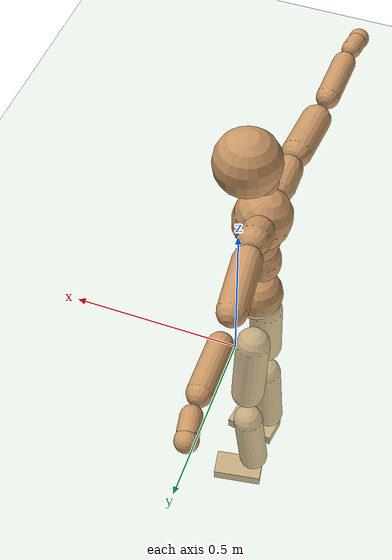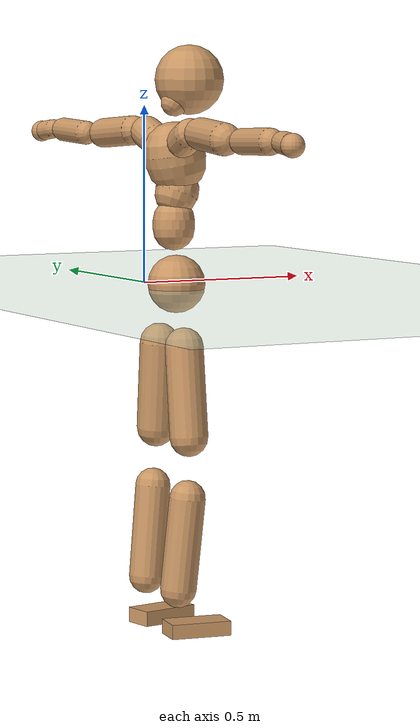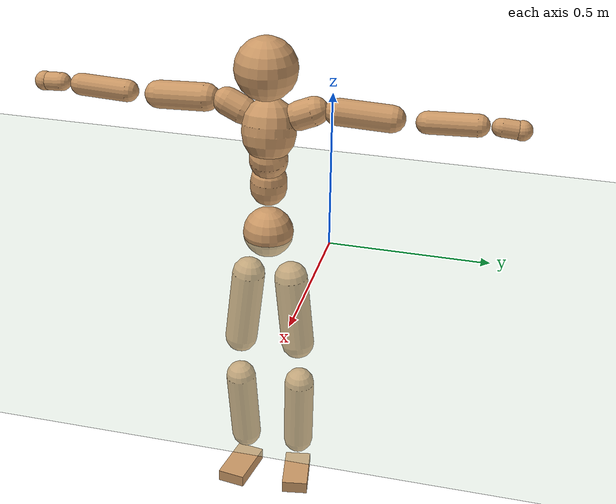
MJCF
<mujoco model="humanoid">
  <compiler coordinate="local" angle="radian"/>
  <default>
    <joint damping="0.0" armature="0.01" stiffness="0.0" limited="true"/>
    <geom conaffinity="1" condim="3" contype="7" margin="0.001" rgba="0.8 0.6 .4 1"/>
  </default>
  <asset>
    <texture type="skybox" builtin="gradient" rgb1=".4 .5 .6" rgb2="0 0 0" width="100" height="100"/>
    <texture builtin="flat" height="1278" mark="cross" markrgb="1 1 1" name="texgeom" random="0.01" rgb1="0.8 0.6 0.4" rgb2="0.8 0.6 0.4" type="cube" width="127"/>
    <texture builtin="checker" height="100" name="texplane" rgb1="0 0 0" rgb2="0.8 0.8 0.8" type="2d" width="100"/>
    <material name="MatPlane" reflectance="0.5" shininess="1" specular="1" texrepeat="60 60" texture="texplane"/>
    <material name="geom" texture="texgeom" texuniform="true"/>
  </asset>
  <worldbody>
    <light cutoff="100" diffuse="1 1 1" dir="-0 0 -1.3" directional="true" exponent="1" pos="0 0 1.3" specular=".1 .1 .1"/>
    <geom conaffinity="1" condim="3" name="floor" pos="0 0 0" rgba="0.8 0.9 0.8 1" size="100 100 .2" type="plane" material="MatPlane"/>
    <body name="Pelvis" pos="-0.0009 -0.1978 0.0117">
      <freejoint name="Pelvis"/>
      <geom type="sphere" contype="1" conaffinity="1" density="500" size="0.0803" pos="0.0000 0.0000 0.0000" name="Pelvis"/>
      <body name="L_Hip" pos="-0.0175 0.0629 -0.0872">
        <joint name="L_Hip_x" type="hinge" pos="0 0 0" axis="1 0 0" stiffness="800" damping="80" armature="0.02" range="-180.0000 180.0000"/>
        <joint name="L_Hip_y" type="hinge" pos="0 0 0" axis="0 1 0" stiffness="800" damping="80" armature="0.02" range="-180.0000 180.0000"/>
        <joint name="L_Hip_z" type="hinge" pos="0 0 0" axis="0 0 1" stiffness="800" damping="80" armature="0.02" range="-180.0000 180.0000"/>
        <geom type="capsule" contype="1" conaffinity="1" density="500" fromto="0.0007 0.0082 -0.0809 0.0030 0.0330 -0.3236" size="0.0542" name="L_Hip"/>
        <body name="L_Knee" pos="0.0037 0.0412 -0.4044">
          <joint name="L_Knee_x" type="hinge" pos="0 0 0" axis="1 0 0" stiffness="800" damping="80" armature="0.02" range="-180.0000 180.0000"/>
          <joint name="L_Knee_y" type="hinge" pos="0 0 0" axis="0 1 0" stiffness="800" damping="80" armature="0.02" range="-180.0000 180.0000"/>
          <joint name="L_Knee_z" type="hinge" pos="0 0 0" axis="0 0 1" stiffness="800" damping="80" armature="0.02" range="-180.0000 180.0000"/>
          <geom type="capsule" contype="1" conaffinity="1" density="500" fromto="-0.0082 -0.0026 -0.0851 -0.0327 -0.0105 -0.3403" size="0.0494" name="L_Knee"/>
          <body name="L_Ankle" pos="-0.0409 -0.0132 -0.4254">
            <joint name="L_Ankle_x" type="hinge" pos="0 0 0" axis="1 0 0" stiffness="800" damping="80" armature="0.02" range="-180.0000 180.0000"/>
            <joint name="L_Ankle_y" type="hinge" pos="0 0 0" axis="0 1 0" stiffness="800" damping="80" armature="0.02" range="-180.0000 180.0000"/>
            <joint name="L_Ankle_z" type="hinge" pos="0 0 0" axis="0 0 1" stiffness="800" damping="80" armature="0.02" range="-180.0000 180.0000"/>
            <geom type="box" contype="1" conaffinity="1" density="500" pos="0.0598 0.0101 -0.0295" size="0.0833 0.0428 0.021" quat="0.9965 0.0000 0.0000 0.0838" name="L_Ankle"/>
            <body name="L_Toe" pos="0.1197 0.0203 -0.059">
              <joint name="L_Toe_x" type="hinge" pos="0 0 0" axis="1 0 0" stiffness="500" damping="50" armature="0.02" range="-180.0000 180.0000"/>
              <joint name="L_Toe_y" type="hinge" pos="0 0 0" axis="0 1 0" stiffness="500" damping="50" armature="0.02" range="-180.0000 180.0000"/>
              <joint name="L_Toe_z" type="hinge" pos="0 0 0" axis="0 0 1" stiffness="500" damping="50" armature="0.02" range="-180.0000 180.0000"/>
              <geom type="box" contype="1" conaffinity="1" density="500" pos="0.0000 0.0000 0.0299" size="0.0009 0.0022 0.0011" quat="0.9959 0.0000 0.0000 0.0904" name="L_Toe"/>
            </body>
          </body>
        </body>
      </body>
      <body name="R_Hip" pos="-0.0128 -0.0606 -0.0853">
        <joint name="R_Hip_x" type="hinge" pos="0 0 0" axis="1 0 0" stiffness="800" damping="80" armature="0.02" range="-180.0000 180.0000"/>
        <joint name="R_Hip_y" type="hinge" pos="0 0 0" axis="0 1 0" stiffness="800" damping="80" armature="0.02" range="-180.0000 180.0000"/>
        <joint name="R_Hip_z" type="hinge" pos="0 0 0" axis="0 0 1" stiffness="800" damping="80" armature="0.02" range="-180.0000 180.0000"/>
        <geom type="capsule" contype="1" conaffinity="1" density="500" fromto="0.0001 -0.0093 -0.0826 0.0003 -0.0373 -0.3303" size="0.0533" name="R_Hip"/>
        <body name="R_Knee" pos="0.0003 -0.0466 -0.4129">
          <joint name="R_Knee_x" type="hinge" pos="0 0 0" axis="1 0 0" stiffness="800" damping="80" armature="0.02" range="-180.0000 180.0000"/>
          <joint name="R_Knee_y" type="hinge" pos="0 0 0" axis="0 1 0" stiffness="800" damping="80" armature="0.02" range="-180.0000 180.0000"/>
          <joint name="R_Knee_z" type="hinge" pos="0 0 0" axis="0 0 1" stiffness="800" damping="80" armature="0.02" range="-180.0000 180.0000"/>
          <geom type="capsule" contype="1" conaffinity="1" density="500" fromto="-0.0076 0.0035 -0.0850 -0.0304 0.0139 -0.3401" size="0.0499" name="R_Knee"/>
          <body name="R_Ankle" pos="-0.038 0.0174 -0.4251">
            <joint name="R_Ankle_x" type="hinge" pos="0 0 0" axis="1 0 0" stiffness="800" damping="80" armature="0.02" range="-180.0000 180.0000"/>
            <joint name="R_Ankle_y" type="hinge" pos="0 0 0" axis="0 1 0" stiffness="800" damping="80" armature="0.02" range="-180.0000 180.0000"/>
            <joint name="R_Ankle_z" type="hinge" pos="0 0 0" axis="0 0 1" stiffness="800" damping="80" armature="0.02" range="-180.0000 180.0000"/>
            <geom type="box" contype="1" conaffinity="1" density="500" pos="0.0614 -0.0092 -0.0247" size="0.0855 0.0458 0.0202" quat="0.9972 0.0000 0.0000 -0.0746" name="R_Ankle"/>
            <body name="R_Toe" pos="0.1229 -0.0185 -0.0494">
              <joint name="R_Toe_x" type="hinge" pos="0 0 0" axis="1 0 0" stiffness="500" damping="50" armature="0.02" range="-180.0000 180.0000"/>
              <joint name="R_Toe_y" type="hinge" pos="0 0 0" axis="0 1 0" stiffness="500" damping="50" armature="0.02" range="-180.0000 180.0000"/>
              <joint name="R_Toe_z" type="hinge" pos="0 0 0" axis="0 0 1" stiffness="500" damping="50" armature="0.02" range="-180.0000 180.0000"/>
              <geom type="box" contype="1" conaffinity="1" density="500" pos="0.0000 0.0000 0.0273" size="0.0008 0.0022 0.0011" quat="0.9978 0.0000 0.0000 -0.0656" name="R_Toe"/>
            </body>
          </body>
        </body>
      </body>
      <body name="Torso" pos="-0.0103 -0.0029 0.0988">
        <joint name="Torso_x" type="hinge" pos="0 0 0" axis="1 0 0" stiffness="1000" damping="100" armature="0.02" range="-180.0000 180.0000"/>
        <joint name="Torso_y" type="hinge" pos="0 0 0" axis="0 1 0" stiffness="1000" damping="100" armature="0.02" range="-180.0000 180.0000"/>
        <joint name="Torso_z" type="hinge" pos="0 0 0" axis="0 0 1" stiffness="1000" damping="100" armature="0.02" range="-180.0000 180.0000"/>
        <geom type="capsule" contype="1" conaffinity="1" density="500" fromto="0.0018 0.0025 0.0786 0.0012 0.0016 0.0524" size="0.0578" name="Torso"/>
        <body name="Spine" pos="0.003 0.0041 0.1309">
          <joint name="Spine_x" type="hinge" pos="0 0 0" axis="1 0 0" stiffness="1000" damping="100" armature="0.02" range="-180.0000 180.0000"/>
          <joint name="Spine_y" type="hinge" pos="0 0 0" axis="0 1 0" stiffness="1000" damping="100" armature="0.02" range="-180.0000 180.0000"/>
          <joint name="Spine_z" type="hinge" pos="0 0 0" axis="0 0 1" stiffness="1000" damping="100" armature="0.02" range="-180.0000 180.0000"/>
          <geom type="capsule" contype="1" conaffinity="1" density="500" fromto="0.0121 0.0010 0.0296 0.0081 0.0007 0.0197" size="0.0603" name="Spine"/>
          <body name="Chest" pos="0.0202 0.0017 0.0493">
            <joint name="Chest_x" type="hinge" pos="0 0 0" axis="1 0 0" stiffness="1000" damping="100" armature="0.02" range="-180.0000 180.0000"/>
            <joint name="Chest_y" type="hinge" pos="0 0 0" axis="0 1 0" stiffness="1000" damping="100" armature="0.02" range="-180.0000 180.0000"/>
            <joint name="Chest_z" type="hinge" pos="0 0 0" axis="0 0 1" stiffness="1000" damping="100" armature="0.02" range="-180.0000 180.0000"/>
            <geom type="capsule" contype="1" conaffinity="1" density="500" fromto="-0.0198 -0.0014 0.0849 -0.0132 -0.0009 0.0566" size="0.0842" name="Chest"/>
            <body name="Neck" pos="-0.0303 -0.0043 0.2059">
              <joint name="Neck_x" type="hinge" pos="0 0 0" axis="1 0 0" stiffness="500" damping="50" armature="0.02" range="-180.0000 180.0000"/>
              <joint name="Neck_y" type="hinge" pos="0 0 0" axis="0 1 0" stiffness="500" damping="50" armature="0.02" range="-180.0000 180.0000"/>
              <joint name="Neck_z" type="hinge" pos="0 0 0" axis="0 0 1" stiffness="500" damping="50" armature="0.02" range="-180.0000 180.0000"/>
              <geom type="capsule" contype="1" conaffinity="1" density="500" fromto="0.0121 0.0016 0.0153 0.0484 0.0062 0.0611" size="0.0386" name="Neck"/>
              <body name="Head" pos="0.0604 0.0078 0.0764">
                <joint name="Head_x" type="hinge" pos="0 0 0" axis="1 0 0" stiffness="500" damping="50" armature="0.02" range="-180.0000 180.0000"/>
                <joint name="Head_y" type="hinge" pos="0 0 0" axis="0 1 0" stiffness="500" damping="50" armature="0.02" range="-180.0000 180.0000"/>
                <joint name="Head_z" type="hinge" pos="0 0 0" axis="0 0 1" stiffness="500" damping="50" armature="0.02" range="-180.0000 180.0000"/>
                <geom type="sphere" contype="1" conaffinity="1" density="500" size="0.0963" pos="0.0000 0.0000 0.0000" name="Head"/>
              </body>
            </body>
            <body name="L_Thorax" pos="-0.032 0.0695 0.1105">
              <joint name="L_Thorax_x" type="hinge" pos="0 0 0" axis="1 0 0" stiffness="500" damping="50" armature="0.02" range="-180.0000 180.0000"/>
              <joint name="L_Thorax_y" type="hinge" pos="0 0 0" axis="0 1 0" stiffness="500" damping="50" armature="0.02" range="-180.0000 180.0000"/>
              <joint name="L_Thorax_z" type="hinge" pos="0 0 0" axis="0 0 1" stiffness="500" damping="50" armature="0.02" range="-180.0000 180.0000"/>
              <geom type="capsule" contype="1" conaffinity="1" density="500" fromto="-0.0007 0.0161 0.0066 -0.0029 0.0644 0.0265" size="0.0451" name="L_Thorax"/>
              <body name="L_Shoulder" pos="-0.0036 0.0805 0.0332">
                <joint name="L_Shoulder_x" type="hinge" pos="0 0 0" axis="1 0 0" stiffness="500" damping="50" armature="0.02" range="-720.0000 720.0000"/>
                <joint name="L_Shoulder_y" type="hinge" pos="0 0 0" axis="0 1 0" stiffness="500" damping="50" armature="0.02" range="-720.0000 720.0000"/>
                <joint name="L_Shoulder_z" type="hinge" pos="0 0 0" axis="0 0 1" stiffness="500" damping="50" armature="0.02" range="-720.0000 720.0000"/>
                <geom type="capsule" contype="1" conaffinity="1" density="500" fromto="-0.0050 0.0539 -0.0038 -0.0200 0.2158 -0.0151" size="0.0416" name="L_Shoulder"/>
                <body name="L_Elbow" pos="-0.0249 0.2697 -0.0189">
                  <joint name="L_Elbow_x" type="hinge" pos="0 0 0" axis="1 0 0" stiffness="500" damping="50" armature="0.02" range="-720.0000 720.0000"/>
                  <joint name="L_Elbow_y" type="hinge" pos="0 0 0" axis="0 1 0" stiffness="500" damping="50" armature="0.02" range="-720.0000 720.0000"/>
                  <joint name="L_Elbow_z" type="hinge" pos="0 0 0" axis="0 0 1" stiffness="500" damping="50" armature="0.02" range="-720.0000 720.0000"/>
                  <geom type="capsule" contype="1" conaffinity="1" density="500" fromto="-0.0006 0.0501 0.0021 -0.0025 0.2003 0.0085" size="0.0344" name="L_Elbow"/>
                  <body name="L_Wrist" pos="-0.0031 0.2504 0.0106">
                    <joint name="L_Wrist_x" type="hinge" pos="0 0 0" axis="1 0 0" stiffness="300" damping="30" armature="0.02" range="-180.0000 180.0000"/>
                    <joint name="L_Wrist_y" type="hinge" pos="0 0 0" axis="0 1 0" stiffness="300" damping="30" armature="0.02" range="-180.0000 180.0000"/>
                    <joint name="L_Wrist_z" type="hinge" pos="0 0 0" axis="0 0 1" stiffness="300" damping="30" armature="0.02" range="-180.0000 180.0000"/>
                    <geom type="capsule" contype="1" conaffinity="1" density="500" fromto="-0.0026 0.0152 -0.0019 -0.0104 0.0610 -0.0077" size="0.0282" name="L_Wrist"/>
                    <body name="L_Hand" pos="-0.013 0.0762 -0.0096">
                      <joint name="L_Hand_x" type="hinge" pos="0 0 0" axis="1 0 0" stiffness="300" damping="30" armature="0.02" range="-180.0000 180.0000"/>
                      <joint name="L_Hand_y" type="hinge" pos="0 0 0" axis="0 1 0" stiffness="300" damping="30" armature="0.02" range="-180.0000 180.0000"/>
                      <joint name="L_Hand_z" type="hinge" pos="0 0 0" axis="0 0 1" stiffness="300" damping="30" armature="0.02" range="-180.0000 180.0000"/>
                      <geom type="sphere" contype="1" conaffinity="1" density="500" size="0.0306" pos="0.0000 0.0000 0.0000" name="L_Hand"/>
                    </body>
                  </body>
                </body>
              </body>
            </body>
            <body name="R_Thorax" pos="-0.0367 -0.0724 0.1082">
              <joint name="R_Thorax_x" type="hinge" pos="0 0 0" axis="1 0 0" stiffness="500" damping="50" armature="0.02" range="-180.0000 180.0000"/>
              <joint name="R_Thorax_y" type="hinge" pos="0 0 0" axis="0 1 0" stiffness="500" damping="50" armature="0.02" range="-180.0000 180.0000"/>
              <joint name="R_Thorax_z" type="hinge" pos="0 0 0" axis="0 0 1" stiffness="500" damping="50" armature="0.02" range="-180.0000 180.0000"/>
              <geom type="capsule" contype="1" conaffinity="1" density="500" fromto="-0.0015 -0.0167 0.0071 -0.0059 -0.0670 0.0284" size="0.044" name="R_Thorax"/>
              <body name="R_Shoulder" pos="-0.0073 -0.0837 0.0356">
                <joint name="R_Shoulder_x" type="hinge" pos="0 0 0" axis="1 0 0" stiffness="500" damping="50" armature="0.02" range="-720.0000 720.0000"/>
                <joint name="R_Shoulder_y" type="hinge" pos="0 0 0" axis="0 1 0" stiffness="500" damping="50" armature="0.02" range="-720.0000 720.0000"/>
                <joint name="R_Shoulder_z" type="hinge" pos="0 0 0" axis="0 0 1" stiffness="500" damping="50" armature="0.02" range="-720.0000 720.0000"/>
                <geom type="capsule" contype="1" conaffinity="1" density="500" fromto="-0.0037 -0.0522 -0.0037 -0.0148 -0.2089 -0.0149" size="0.0439" name="R_Shoulder"/>
                <body name="R_Elbow" pos="-0.0185 -0.2611 -0.0186">
                  <joint name="R_Elbow_x" type="hinge" pos="0 0 0" axis="1 0 0" stiffness="500" damping="50" armature="0.02" range="-720.0000 720.0000"/>
                  <joint name="R_Elbow_y" type="hinge" pos="0 0 0" axis="0 1 0" stiffness="500" damping="50" armature="0.02" range="-720.0000 720.0000"/>
                  <joint name="R_Elbow_z" type="hinge" pos="0 0 0" axis="0 0 1" stiffness="500" damping="50" armature="0.02" range="-720.0000 720.0000"/>
                  <geom type="capsule" contype="1" conaffinity="1" density="500" fromto="-0.0018 -0.0521 0.0013 -0.0071 -0.2085 0.0052" size="0.035" name="R_Elbow"/>
                  <body name="R_Wrist" pos="-0.0088 -0.2606 0.0065">
                    <joint name="R_Wrist_x" type="hinge" pos="0 0 0" axis="1 0 0" stiffness="300" damping="30" armature="0.02" range="-180.0000 180.0000"/>
                    <joint name="R_Wrist_y" type="hinge" pos="0 0 0" axis="0 1 0" stiffness="300" damping="30" armature="0.02" range="-180.0000 180.0000"/>
                    <joint name="R_Wrist_z" type="hinge" pos="0 0 0" axis="0 0 1" stiffness="300" damping="30" armature="0.02" range="-180.0000 180.0000"/>
                    <geom type="capsule" contype="1" conaffinity="1" density="500" fromto="-0.0020 -0.0156 -0.0014 -0.0079 -0.0624 -0.0058" size="0.0293" name="R_Wrist"/>
                    <body name="R_Hand" pos="-0.0099 -0.078 -0.0072">
                      <joint name="R_Hand_x" type="hinge" pos="0 0 0" axis="1 0 0" stiffness="300" damping="30" armature="0.02" range="-180.0000 180.0000"/>
                      <joint name="R_Hand_y" type="hinge" pos="0 0 0" axis="0 1 0" stiffness="300" damping="30" armature="0.02" range="-180.0000 180.0000"/>
                      <joint name="R_Hand_z" type="hinge" pos="0 0 0" axis="0 0 1" stiffness="300" damping="30" armature="0.02" range="-180.0000 180.0000"/>
                      <geom type="sphere" contype="1" conaffinity="1" density="500" size="0.0312" pos="0.0000 0.0000 0.0000" name="R_Hand"/>
                    </body>
                  </body>
                </body>
              </body>
            </body>
          </body>
        </body>
      </body>
    </body>
  </worldbody>
  <actuator>
    <motor name="L_Hip_x" joint="L_Hip_x" gear="500"/>
    <motor name="L_Hip_y" joint="L_Hip_y" gear="500"/>
    <motor name="L_Hip_z" joint="L_Hip_z" gear="500"/>
    <motor name="L_Knee_x" joint="L_Knee_x" gear="500"/>
    <motor name="L_Knee_y" joint="L_Knee_y" gear="500"/>
    <motor name="L_Knee_z" joint="L_Knee_z" gear="500"/>
    <motor name="L_Ankle_x" joint="L_Ankle_x" gear="500"/>
    <motor name="L_Ankle_y" joint="L_Ankle_y" gear="500"/>
    <motor name="L_Ankle_z" joint="L_Ankle_z" gear="500"/>
    <motor name="L_Toe_x" joint="L_Toe_x" gear="500"/>
    <motor name="L_Toe_y" joint="L_Toe_y" gear="500"/>
    <motor name="L_Toe_z" joint="L_Toe_z" gear="500"/>
    <motor name="R_Hip_x" joint="R_Hip_x" gear="500"/>
    <motor name="R_Hip_y" joint="R_Hip_y" gear="500"/>
    <motor name="R_Hip_z" joint="R_Hip_z" gear="500"/>
    <motor name="R_Knee_x" joint="R_Knee_x" gear="500"/>
    <motor name="R_Knee_y" joint="R_Knee_y" gear="500"/>
    <motor name="R_Knee_z" joint="R_Knee_z" gear="500"/>
    <motor name="R_Ankle_x" joint="R_Ankle_x" gear="500"/>
    <motor name="R_Ankle_y" joint="R_Ankle_y" gear="500"/>
    <motor name="R_Ankle_z" joint="R_Ankle_z" gear="500"/>
    <motor name="R_Toe_x" joint="R_Toe_x" gear="500"/>
    <motor name="R_Toe_y" joint="R_Toe_y" gear="500"/>
    <motor name="R_Toe_z" joint="R_Toe_z" gear="500"/>
    <motor name="Torso_x" joint="Torso_x" gear="500"/>
    <motor name="Torso_y" joint="Torso_y" gear="500"/>
    <motor name="Torso_z" joint="Torso_z" gear="500"/>
    <motor name="Spine_x" joint="Spine_x" gear="500"/>
    <motor name="Spine_y" joint="Spine_y" gear="500"/>
    <motor name="Spine_z" joint="Spine_z" gear="500"/>
    <motor name="Chest_x" joint="Chest_x" gear="500"/>
    <motor name="Chest_y" joint="Chest_y" gear="500"/>
    <motor name="Chest_z" joint="Chest_z" gear="500"/>
    <motor name="Neck_x" joint="Neck_x" gear="500"/>
    <motor name="Neck_y" joint="Neck_y" gear="500"/>
    <motor name="Neck_z" joint="Neck_z" gear="500"/>
    <motor name="Head_x" joint="Head_x" gear="500"/>
    <motor name="Head_y" joint="Head_y" gear="500"/>
    <motor name="Head_z" joint="Head_z" gear="500"/>
    <motor name="L_Thorax_x" joint="L_Thorax_x" gear="500"/>
    <motor name="L_Thorax_y" joint="L_Thorax_y" gear="500"/>
    <motor name="L_Thorax_z" joint="L_Thorax_z" gear="500"/>
    <motor name="L_Shoulder_x" joint="L_Shoulder_x" gear="500"/>
    <motor name="L_Shoulder_y" joint="L_Shoulder_y" gear="500"/>
    <motor name="L_Shoulder_z" joint="L_Shoulder_z" gear="500"/>
    <motor name="L_Elbow_x" joint="L_Elbow_x" gear="500"/>
    <motor name="L_Elbow_y" joint="L_Elbow_y" gear="500"/>
    <motor name="L_Elbow_z" joint="L_Elbow_z" gear="500"/>
    <motor name="L_Wrist_x" joint="L_Wrist_x" gear="500"/>
    <motor name="L_Wrist_y" joint="L_Wrist_y" gear="500"/>
    <motor name="L_Wrist_z" joint="L_Wrist_z" gear="500"/>
    <motor name="L_Hand_x" joint="L_Hand_x" gear="500"/>
    <motor name="L_Hand_y" joint="L_Hand_y" gear="500"/>
    <motor name="L_Hand_z" joint="L_Hand_z" gear="500"/>
    <motor name="R_Thorax_x" joint="R_Thorax_x" gear="500"/>
    <motor name="R_Thorax_y" joint="R_Thorax_y" gear="500"/>
    <motor name="R_Thorax_z" joint="R_Thorax_z" gear="500"/>
    <motor name="R_Shoulder_x" joint="R_Shoulder_x" gear="500"/>
    <motor name="R_Shoulder_y" joint="R_Shoulder_y" gear="500"/>
    <motor name="R_Shoulder_z" joint="R_Shoulder_z" gear="500"/>
    <motor name="R_Elbow_x" joint="R_Elbow_x" gear="500"/>
    <motor name="R_Elbow_y" joint="R_Elbow_y" gear="500"/>
    <motor name="R_Elbow_z" joint="R_Elbow_z" gear="500"/>
    <motor name="R_Wrist_x" joint="R_Wrist_x" gear="500"/>
    <motor name="R_Wrist_y" joint="R_Wrist_y" gear="500"/>
    <motor name="R_Wrist_z" joint="R_Wrist_z" gear="500"/>
    <motor name="R_Hand_x" joint="R_Hand_x" gear="500"/>
    <motor name="R_Hand_y" joint="R_Hand_y" gear="500"/>
    <motor name="R_Hand_z" joint="R_Hand_z" gear="500"/>
  </actuator>
  <contact>
    <exclude body1="Torso" body2="Chest"/>
    <exclude body1="Head" body2="Chest"/>
    <exclude body1="R_Knee" body2="R_Toe"/>
    <exclude body1="R_Knee" body2="L_Ankle"/>
    <exclude body1="R_Knee" body2="L_Toe"/>
    <exclude body1="L_Knee" body2="L_Toe"/>
    <exclude body1="L_Knee" body2="R_Ankle"/>
    <exclude body1="L_Knee" body2="R_Toe"/>
    <exclude body1="L_Shoulder" body2="Chest"/>
    <exclude body1="R_Shoulder" body2="Chest"/>
  </contact>
  <sensor/>
  <size njmax="700" nconmax="700"/>
</mujoco>
